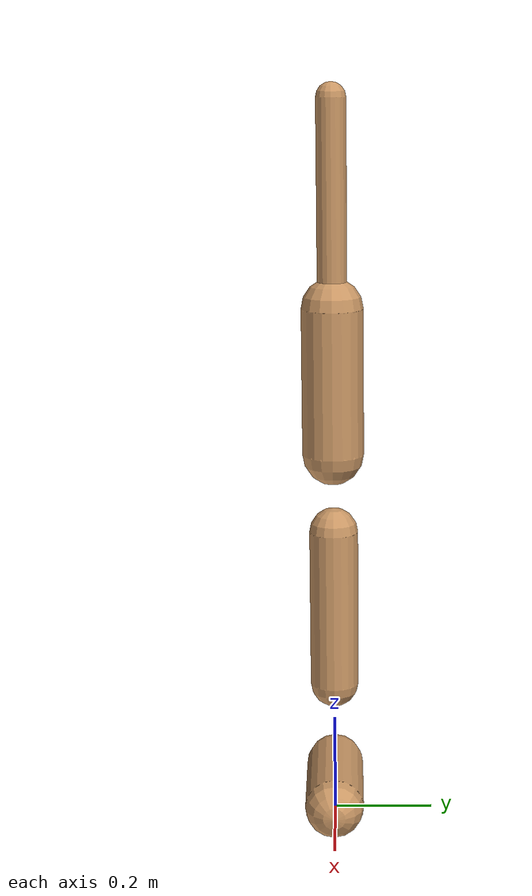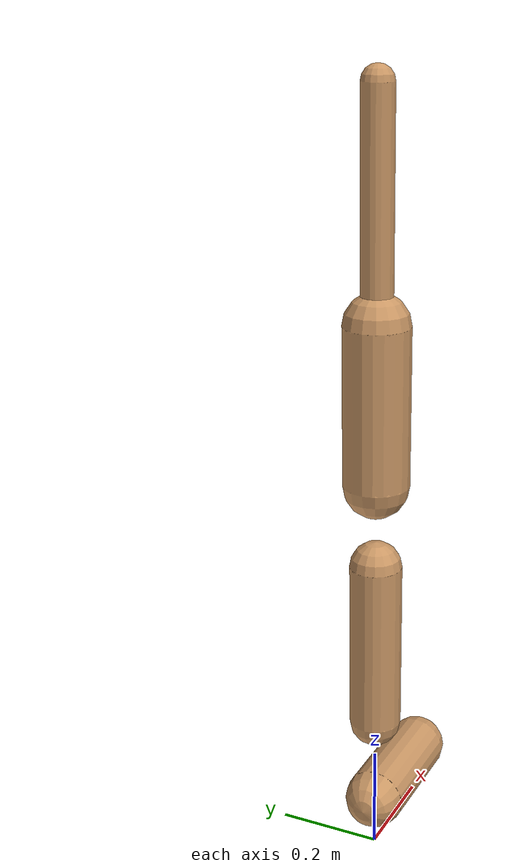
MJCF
<mujoco model="walker2d">
  <compiler angle="degree" coordinate="global" inertiafromgeom="true" />
  <default>
    <joint armature="0.01" damping=".1" limited="true" />
    <geom conaffinity="0" condim="3" contype="1" density="1000" friction="0.8 .1 .1" rgba="0.8 0.6 .4 1" />
  </default>
  <option integrator="RK4" timestep="0.002" />
  <worldbody>

    <body name="torso" pos="0 0 -0.3361977256998961">
      <joint armature="0" axis="1 0 0" damping="0" limited="false" name="ignorex" pos="0 0 0" stiffness="0" type="slide" />
      <joint armature="0" axis="0 0 1" damping="0" limited="false" name="ignorez" pos="0 0 0" ref="1.25" stiffness="0" type="slide" />
      <joint armature="0" axis="0 1 0" damping="0" limited="false" name="ignorey" pos="0 0 0" stiffness="0" type="hinge" />
      <geom fromto="0 0 1.45 0 0 1.05" name="torso_geom" size="0.029071828071130592" type="capsule" />
      <body name="thigh">
        <joint axis="0 -1 0" name="thigh_joint" pos="0 0 1.05" range="-150 0" type="hinge" />
        <geom fromto="0.0 0.0 1.05 0.0 0.0 0.7592515542788981" name="thigh_geom" size="0.06076014997171339" type="capsule" />
        <body name="leg" pos="0.0 0.0 0.15925155427889814">
          <joint axis="0 -1 0" name="leg_joint" pos="0 0 0.6" range="-150 0" type="hinge" />
          <geom fromto="0.0 0.0 0.6 0.0 0.0 0.2769461714209979" name="leg_geom" size="0.04860811997737071" type="capsule" />
          <body name="foot" pos="0.0 0.0 0.17694617142099792">
            <joint axis="0 -1 0" name="foot_joint" pos="0 0 0.1" range="-45 45" type="hinge" />
            <geom fromto="-0.0 0.0 0.1 0.21340472714599878 0.0 0.1" name="foot_geom" size="0.05729071107393153" type="capsule" />
          </body>
        </body>
      </body>

      <body name="thigh_left">
        <joint axis="0 -1 0" name="thigh_left_joint" pos="0 0 1.05" range="-150 0" type="hinge" />
        <geom fromto="0.0 0.0 1.05 0.0 0.0 0.7592515542788981" name="thigh_left_geom" rgba=".7 .3 .6 1" size="0.06076014997171339" type="capsule" />
        <body name="leg_left" pos="0.0 0.0 0.15925155427889814">
          <joint axis="0 -1 0" name="leg_left_joint" pos="0 0 0.6" range="-150 0" type="hinge" />
          <geom fromto="0.0 0.0 0.6 0.0 0.0 0.2769461714209979" name="leg_left_geom" rgba=".7 .3 .6 1" size="0.04860811997737071" type="capsule" />
          <body name="foot_left" pos="0.0 0.0 0.17694617142099792">
            <joint axis="0 -1 0" name="foot_left_joint" pos="0 0 0.1" range="-45 45" type="hinge" />
            <geom fromto="-0.0 0.0 0.1 0.21340472714599878 0.0 0.1" name="foot_left_geom" rgba=".7 .3 .6 1" size="0.05729071107393153" type="capsule" />
          </body>
        </body>
      </body>
    </body>
  </worldbody>
  <actuator>

    <motor ctrllimited="true" ctrlrange="-1.0 1.0" gear="100" joint="thigh_joint" />
    <motor ctrllimited="true" ctrlrange="-1.0 1.0" gear="100" joint="leg_joint" />
    <motor ctrllimited="true" ctrlrange="-1.0 1.0" gear="100" joint="foot_joint" />
    <motor ctrllimited="true" ctrlrange="-1.0 1.0" gear="100" joint="thigh_left_joint" />
    <motor ctrllimited="true" ctrlrange="-1.0 1.0" gear="100" joint="leg_left_joint" />
    <motor ctrllimited="true" ctrlrange="-1.0 1.0" gear="100" joint="foot_left_joint" />

  </actuator>
</mujoco>
